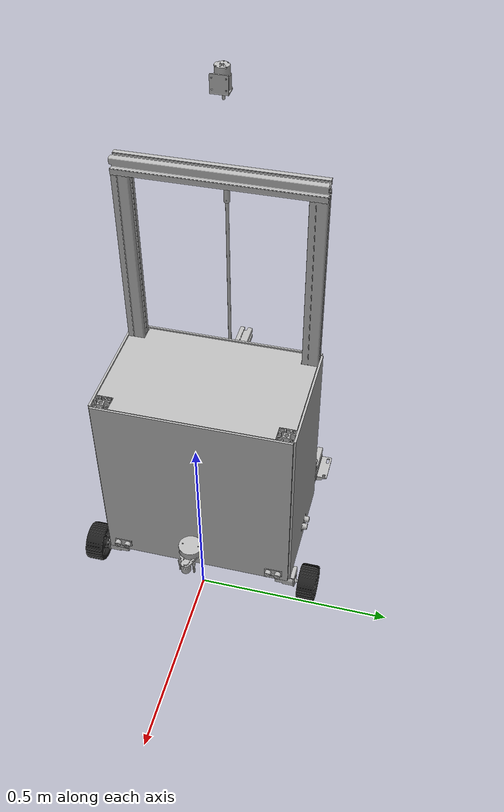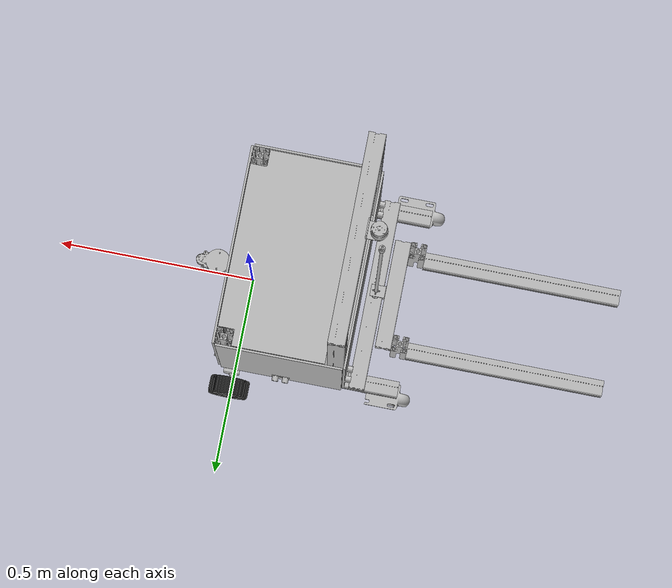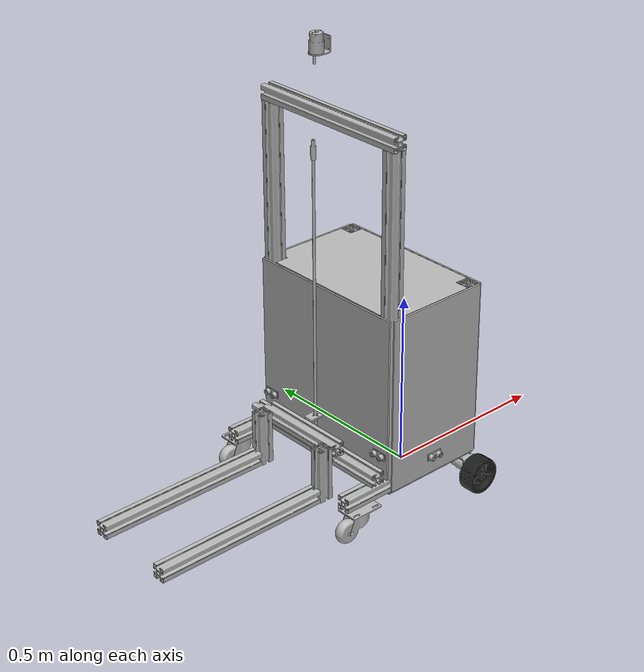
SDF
<sdf version="1.7">
 <world name="default">
  <gravity>0 0 -9.8</gravity>
  <physics name="default_physics" default="0" type="ode">
   <max_step_size>0.001</max_step_size>
   <real_time_factor>1</real_time_factor>
   <real_time_update_rate>1000</real_time_update_rate>
  </physics>
  <light name="Warehouse_CeilingLight_003" type="point">
   <pose>0 0 9 0 -0 0</pose>
   <diffuse>0.5 0.5 0.5 1</diffuse>
   <specular>0.2 0.2 0.2 1</specular>
   <attenuation>
    <range>80</range>
    <constant>0.3</constant>
    <linear>0.01</linear>
    <quadratic>0.001</quadratic>
   </attenuation>
   <direction>0.1 0.1 -1</direction>
   <spot><inner_angle>0</inner_angle><outer_angle>0</outer_angle><falloff>0</falloff></spot>
  </light>
  <magnetic_field>6e-06 2.3e-05 -4.2e-05</magnetic_field>
  <atmosphere type="adiabatic"/>
  <scene><ambient>0.4 0.4 0.4 1</ambient><background>0.7 0.7 0.7 1</background><shadows>1</shadows></scene>
  <audio><device>default</device></audio>
  <spherical_coordinates>
   <surface_model>EARTH_WGS84</surface_model>
   <latitude_deg>0</latitude_deg>
   <longitude_deg>0</longitude_deg>
   <elevation>0</elevation>
   <heading_deg>0</heading_deg>
  </spherical_coordinates>
  <model name="fork_robot">
   <link name="base_footprint">
    <inertial>
     <pose>-0.12469 0.000681 0.25111 0 -0 0</pose>
     <mass>270.954</mass>
     <inertia>
      <ixx>13.2104</ixx>
      <ixy>0.00317811</ixy>
      <ixz>0.253064</ixz>
      <iyy>11.6561</iyy>
      <iyz>-0.0112571</iyz>
      <izz>6.98851</izz>
     </inertia>
    </inertial>
    <collision name="base_footprint_fixed_joint_lump__base_link_collision">
     <pose>-0.123128 0.000456 0.427 0 -0 1.5708</pose>
     <geometry><box><size>0.6 0.325 0.68</size></box></geometry>
    </collision>
    <collision name="base_footprint_fixed_joint_lump__right_caster_link_1_collision_1">
     <pose>-0.407107 -0.284998 0.053 0 -0 1.5708</pose>
     <geometry><sphere><radius>0.053</radius></sphere></geometry>
     <surface>
      <contact><ode><kp>1e+06</kp><kd>10</kd><max_vel>1</max_vel><min_depth>0.001</min_depth></ode></contact>
      <friction><ode><mu>0.05</mu><mu2>0.05</mu2></ode></friction>
     </surface>
    </collision>
    <collision name="base_footprint_fixed_joint_lump__left_caster_link_1_collision_2">
     <pose>-0.407107 0.286002 0.053 0 -0 1.5708</pose>
     <geometry><sphere><radius>0.053</radius></sphere></geometry>
     <surface>
      <contact><ode><kp>1e+06</kp><kd>10</kd><max_vel>1</max_vel><min_depth>0.001</min_depth></ode></contact>
      <friction><ode><mu>0.05</mu><mu2>0.05</mu2></ode></friction>
     </surface>
    </collision>
    <visual name="base_footprint_fixed_joint_lump__base_link_visual">
     <pose>0.484372 0.208456 0.087 0 -0 1.5708</pose>
     <geometry>
      <mesh>
       <scale>0.001 0.001 0.001</scale>
       <uri>file:///home/raja/mybot_ws/install/mybot_description/share/mybot_description/meshes/base_link.stl</uri>
      </mesh>
     </geometry>
     <material>
      <script><name>Gazebo/Grey</name><uri>file://media/materials/scripts/gazebo.material</uri></script>
     </material>
    </visual>
    <visual name="base_footprint_fixed_joint_lump__front_bottom_slot_link_1_visual_1">
     <pose>0.484372 0.208456 0.087 0 -0 1.5708</pose>
     <geometry>
      <mesh>
       <scale>0.001 0.001 0.001</scale>
       <uri>file:///home/raja/mybot_ws/install/mybot_description/share/mybot_description/meshes/front_bottom_slot_link_1.stl</uri>
      </mesh>
     </geometry>
    </visual>
    <visual name="base_footprint_fixed_joint_lump__right_bottom_slot_link_1_visual_2">
     <pose>0.484372 0.208456 0.087 0 -0 1.5708</pose>
     <geometry>
      <mesh>
       <scale>0.001 0.001 0.001</scale>
       <uri>file:///home/raja/mybot_ws/install/mybot_description/share/mybot_description/meshes/right_bottom_slot_link_1.stl</uri>
      </mesh>
     </geometry>
    </visual>
    <visual name="base_footprint_fixed_joint_lump__right_caster_link_1_visual_3">
     <pose>0.484372 0.208456 0.087 0 -0 1.5708</pose>
     <geometry>
      <mesh>
       <scale>0.001 0.001 0.001</scale>
       <uri>file:///home/raja/mybot_ws/install/mybot_description/share/mybot_description/meshes/right_caster_link_1.stl</uri>
      </mesh>
     </geometry>
    </visual>
    <visual name="base_footprint_fixed_joint_lump__fork_front_slot_right_link_1_visual_4">
     <pose>0.484372 0.208456 0.087 0 -0 1.5708</pose>
     <geometry>
      <mesh>
       <scale>0.001 0.001 0.001</scale>
       <uri>file:///home/raja/mybot_ws/install/mybot_description/share/mybot_description/meshes/fork_front_slot_right_link_1.stl</uri>
      </mesh>
     </geometry>
    </visual>
    <visual name="base_footprint_fixed_joint_lump__right_panel_link_1_visual_5">
     <pose>0.484372 0.208456 0.087 0 -0 1.5708</pose>
     <geometry>
      <mesh>
       <scale>0.001 0.001 0.001</scale>
       <uri>file:///home/raja/mybot_ws/install/mybot_description/share/mybot_description/meshes/right_panel_link_1.stl</uri>
      </mesh>
     </geometry>
    </visual>
    <visual name="base_footprint_fixed_joint_lump__ultrasonic_side_right_1_visual_6">
     <pose>0.484372 0.208456 0.087 0 -0 1.5708</pose>
     <geometry>
      <mesh>
       <scale>0.001 0.001 0.001</scale>
       <uri>file:///home/raja/mybot_ws/install/mybot_description/share/mybot_description/meshes/ultrasonic_side_right_1.stl</uri>
      </mesh>
     </geometry>
    </visual>
    <visual name="base_footprint_fixed_joint_lump__left_bottom_slot_link_1_visual_7">
     <pose>0.484372 0.208456 0.087 0 -0 1.5708</pose>
     <geometry>
      <mesh>
       <scale>0.001 0.001 0.001</scale>
       <uri>file:///home/raja/mybot_ws/install/mybot_description/share/mybot_description/meshes/left_bottom_slot_link_1.stl</uri>
      </mesh>
     </geometry>
    </visual>
    <visual name="base_footprint_fixed_joint_lump__left_caster_link_1_visual_8">
     <pose>0.484372 0.208456 0.087 0 -0 1.5708</pose>
     <geometry>
      <mesh>
       <scale>0.001 0.001 0.001</scale>
       <uri>file:///home/raja/mybot_ws/install/mybot_description/share/mybot_description/meshes/left_caster_link_1.stl</uri>
      </mesh>
     </geometry>
    </visual>
    <visual name="base_footprint_fixed_joint_lump__fork_front_slot_left_link_1_visual_9">
     <pose>0.484372 0.208456 0.087 0 -0 1.5708</pose>
     <geometry>
      <mesh>
       <scale>0.001 0.001 0.001</scale>
       <uri>file:///home/raja/mybot_ws/install/mybot_description/share/mybot_description/meshes/fork_front_slot_left_link_1.stl</uri>
      </mesh>
     </geometry>
    </visual>
    <visual name="base_footprint_fixed_joint_lump__top_panel_link_1_visual_10">
     <pose>0.484372 0.208456 0.087 0 -0 1.5708</pose>
     <geometry>
      <mesh>
       <scale>0.001 0.001 0.001</scale>
       <uri>file:///home/raja/mybot_ws/install/mybot_description/share/mybot_description/meshes/top_panel_link_1.stl</uri>
      </mesh>
     </geometry>
    </visual>
    <visual name="base_footprint_fixed_joint_lump__lidar_link_1_visual_11">
     <pose>0.484372 0.208456 0.087 0 -0 1.5708</pose>
     <geometry>
      <mesh>
       <scale>0.001 0.001 0.001</scale>
       <uri>file:///home/raja/mybot_ws/install/mybot_description/share/mybot_description/meshes/lidar_link_1.stl</uri>
      </mesh>
     </geometry>
    </visual>
    <visual name="base_footprint_fixed_joint_lump__imu_link_1_visual_12">
     <pose>0.484372 0.208456 0.087 0 -0 1.5708</pose>
     <geometry>
      <mesh>
       <scale>0.001 0.001 0.001</scale>
       <uri>file:///home/raja/mybot_ws/install/mybot_description/share/mybot_description/meshes/imu_link_1.stl</uri>
      </mesh>
     </geometry>
    </visual>
    <visual name="base_footprint_fixed_joint_lump__fork_rear_slot_left_link_1_visual_13">
     <pose>0.484372 0.208456 0.087 0 -0 1.5708</pose>
     <geometry>
      <mesh>
       <scale>0.001 0.001 0.001</scale>
       <uri>file:///home/raja/mybot_ws/install/mybot_description/share/mybot_description/meshes/fork_rear_slot_left_link_1.stl</uri>
      </mesh>
     </geometry>
    </visual>
    <visual name="base_footprint_fixed_joint_lump__fork_top_slot_link_1_visual_14">
     <pose>0.484372 0.208456 0.087 0 -0 1.5708</pose>
     <geometry>
      <mesh>
       <scale>0.001 0.001 0.001</scale>
       <uri>file:///home/raja/mybot_ws/install/mybot_description/share/mybot_description/meshes/fork_top_slot_link_1.stl</uri>
      </mesh>
     </geometry>
    </visual>
    <visual name="base_footprint_fixed_joint_lump__fork_rear_slot_right_link_1_visual_15">
     <pose>0.484372 0.208456 0.087 0 -0 1.5708</pose>
     <geometry>
      <mesh>
       <scale>0.001 0.001 0.001</scale>
       <uri>file:///home/raja/mybot_ws/install/mybot_description/share/mybot_description/meshes/fork_rear_slot_right_link_1.stl</uri>
      </mesh>
     </geometry>
    </visual>
    <visual name="base_footprint_fixed_joint_lump__fork_bottom_slot_link_1_visual_16">
     <pose>0.484372 0.208456 0.087 0 -0 1.5708</pose>
     <geometry>
      <mesh>
       <scale>0.001 0.001 0.001</scale>
       <uri>file:///home/raja/mybot_ws/install/mybot_description/share/mybot_description/meshes/fork_bottom_slot_link_1.stl</uri>
      </mesh>
     </geometry>
    </visual>
    <visual name="base_footprint_fixed_joint_lump__bottom_screw_holder_link_1_visual_17">
     <pose>0.484372 0.208456 0.087 0 -0 1.5708</pose>
     <geometry>
      <mesh>
       <scale>0.001 0.001 0.001</scale>
       <uri>file:///home/raja/mybot_ws/install/mybot_description/share/mybot_description/meshes/bottom_screw_holder_link_1.stl</uri>
      </mesh>
     </geometry>
    </visual>
    <visual name="base_footprint_fixed_joint_lump__lead_motor_holder_link_1_visual_18">
     <pose>0.484372 0.208456 0.087 0 -0 1.5708</pose>
     <geometry>
      <mesh>
       <scale>0.001 0.001 0.001</scale>
       <uri>file:///home/raja/mybot_ws/install/mybot_description/share/mybot_description/meshes/lead_motor_holder_link_1.stl</uri>
      </mesh>
     </geometry>
    </visual>
    <visual name="base_footprint_fixed_joint_lump__lead_motor_link_1_visual_19">
     <pose>0.484372 0.208456 0.087 0 -0 1.5708</pose>
     <geometry>
      <mesh>
       <scale>0.001 0.001 0.001</scale>
       <uri>file:///home/raja/mybot_ws/install/mybot_description/share/mybot_description/meshes/lead_motor_link_1.stl</uri>
      </mesh>
     </geometry>
    </visual>
    <visual name="base_footprint_fixed_joint_lump__coupling_link_1_visual_20">
     <pose>0.484372 0.208456 0.087 0 -0 1.5708</pose>
     <geometry>
      <mesh>
       <scale>0.001 0.001 0.001</scale>
       <uri>file:///home/raja/mybot_ws/install/mybot_description/share/mybot_description/meshes/coupling_link_1.stl</uri>
      </mesh>
     </geometry>
    </visual>
    <visual name="base_footprint_fixed_joint_lump__lead_screw_link_1_visual_21">
     <pose>0.484372 0.208456 0.087 0 -0 1.5708</pose>
     <geometry>
      <mesh>
       <scale>0.001 0.001 0.001</scale>
       <uri>file:///home/raja/mybot_ws/install/mybot_description/share/mybot_description/meshes/lead_screw_link_1.stl</uri>
      </mesh>
     </geometry>
    </visual>
    <visual name="base_footprint_fixed_joint_lump__left_panel_link_1_visual_22">
     <pose>0.484372 0.208456 0.087 0 -0 1.5708</pose>
     <geometry>
      <mesh>
       <scale>0.001 0.001 0.001</scale>
       <uri>file:///home/raja/mybot_ws/install/mybot_description/share/mybot_description/meshes/left_panel_link_1.stl</uri>
      </mesh>
     </geometry>
    </visual>
    <visual name="base_footprint_fixed_joint_lump__ultrasonic_side_left_1_visual_23">
     <pose>0.484372 0.208456 0.087 0 -0 1.5708</pose>
     <geometry>
      <mesh>
       <scale>0.001 0.001 0.001</scale>
       <uri>file:///home/raja/mybot_ws/install/mybot_description/share/mybot_description/meshes/ultrasonic_side_left_1.stl</uri>
      </mesh>
     </geometry>
    </visual>
    <visual name="base_footprint_fixed_joint_lump__front_panel_link_1_visual_24">
     <pose>0.484372 0.208456 0.087 0 -0 1.5708</pose>
     <geometry>
      <mesh>
       <scale>0.001 0.001 0.001</scale>
       <uri>file:///home/raja/mybot_ws/install/mybot_description/share/mybot_description/meshes/front_panel_link_1.stl</uri>
      </mesh>
     </geometry>
    </visual>
    <visual name="base_footprint_fixed_joint_lump__ultrasonic_front_left_1_visual_25">
     <pose>0.484372 0.208456 0.087 0 -0 1.5708</pose>
     <geometry>
      <mesh>
       <scale>0.001 0.001 0.001</scale>
       <uri>file:///home/raja/mybot_ws/install/mybot_description/share/mybot_description/meshes/ultrasonic_front_left_1.stl</uri>
      </mesh>
     </geometry>
    </visual>
    <visual name="base_footprint_fixed_joint_lump__ultrasonic_front_right_1_visual_26">
     <pose>0.484372 0.208456 0.087 0 -0 1.5708</pose>
     <geometry>
      <mesh>
       <scale>0.001 0.001 0.001</scale>
       <uri>file:///home/raja/mybot_ws/install/mybot_description/share/mybot_description/meshes/ultrasonic_front_right_1.stl</uri>
      </mesh>
     </geometry>
    </visual>
    <visual name="base_footprint_fixed_joint_lump__rear_bottom_slot_link_1_visual_27">
     <pose>0.484372 0.208456 0.087 0 -0 1.5708</pose>
     <geometry>
      <mesh>
       <scale>0.001 0.001 0.001</scale>
       <uri>file:///home/raja/mybot_ws/install/mybot_description/share/mybot_description/meshes/rear_bottom_slot_link_1.stl</uri>
      </mesh>
     </geometry>
    </visual>
    <visual name="base_footprint_fixed_joint_lump__rear_panel_link_1_visual_28">
     <pose>0.484372 0.208456 0.087 0 -0 1.5708</pose>
     <geometry>
      <mesh>
       <scale>0.001 0.001 0.001</scale>
       <uri>file:///home/raja/mybot_ws/install/mybot_description/share/mybot_description/meshes/rear_panel_link_1.stl</uri>
      </mesh>
     </geometry>
    </visual>
    <visual name="base_footprint_fixed_joint_lump__ultrasonic_rear_right_1_visual_29">
     <pose>0.484372 0.208456 0.087 0 -0 1.5708</pose>
     <geometry>
      <mesh>
       <scale>0.001 0.001 0.001</scale>
       <uri>file:///home/raja/mybot_ws/install/mybot_description/share/mybot_description/meshes/ultrasonic_rear_right_1.stl</uri>
      </mesh>
     </geometry>
    </visual>
    <visual name="base_footprint_fixed_joint_lump__ultrasonic_rear_left_1_visual_30">
     <pose>0.484372 0.208456 0.087 0 -0 1.5708</pose>
     <geometry>
      <mesh>
       <scale>0.001 0.001 0.001</scale>
       <uri>file:///home/raja/mybot_ws/install/mybot_description/share/mybot_description/meshes/ultrasonic_rear_left_1.stl</uri>
      </mesh>
     </geometry>
    </visual>
    <visual name="base_footprint_fixed_joint_lump__left_motor_holder_link_1_visual_31">
     <pose>0.484372 0.208456 0.087 0 -0 1.5708</pose>
     <geometry>
      <mesh>
       <scale>0.001 0.001 0.001</scale>
       <uri>file:///home/raja/mybot_ws/install/mybot_description/share/mybot_description/meshes/left_motor_holder_link_1.stl</uri>
      </mesh>
     </geometry>
    </visual>
    <visual name="base_footprint_fixed_joint_lump__left_motor_link_1_visual_32">
     <pose>0.484372 0.208456 0.087 0 -0 1.5708</pose>
     <geometry>
      <mesh>
       <scale>0.001 0.001 0.001</scale>
       <uri>file:///home/raja/mybot_ws/install/mybot_description/share/mybot_description/meshes/left_motor_link_1.stl</uri>
      </mesh>
     </geometry>
    </visual>
    <visual name="base_footprint_fixed_joint_lump__right_motor_holder_link_1_visual_33">
     <pose>0.484372 0.208456 0.087 0 -0 1.5708</pose>
     <geometry>
      <mesh>
       <scale>0.001 0.001 0.001</scale>
       <uri>file:///home/raja/mybot_ws/install/mybot_description/share/mybot_description/meshes/right_motor_holder_link_1.stl</uri>
      </mesh>
     </geometry>
    </visual>
    <visual name="base_footprint_fixed_joint_lump__right_motor_link_1_visual_34">
     <pose>0.484372 0.208456 0.087 0 -0 1.5708</pose>
     <geometry>
      <mesh>
       <scale>0.001 0.001 0.001</scale>
       <uri>file:///home/raja/mybot_ws/install/mybot_description/share/mybot_description/meshes/right_motor_link_1.stl</uri>
      </mesh>
     </geometry>
    </visual>
    <sensor name="ultrasonic_side_right_sensor" type="ray">
     <always_on>1</always_on>
     <visualize>0</visualize>
     <update_rate>10</update_rate>
     <ray>
      <scan>
       <horizontal>
        <samples>5</samples>
        <resolution>1</resolution>
        <min_angle>-0.13</min_angle>
        <max_angle>0.13</max_angle>
       </horizontal>
       <vertical>
        <samples>1</samples>
        <resolution>1</resolution>
        <min_angle>0</min_angle>
        <max_angle>0</max_angle>
       </vertical>
      </scan>
      <range><min>0.05</min><max>4</max><resolution>0.01</resolution></range>
      <noise><type>gaussian</type><mean>0</mean><stddev>0.005</stddev></noise>
     </ray>
     <plugin name="ultrasonic_side_right_plugin" filename="libgazebo_ros_ray_sensor.so">
      <ros><remapping>~/out:=/ultrasonic_side_right</remapping></ros>
      <output_type>sensor_msgs/Range</output_type>
      <radiation_type>ultrasound</radiation_type>
      <frame_name>ultrasonic_side_right_sensor_link</frame_name>
     </plugin>
     <pose>-0.121009 -0.298492 0.144721 0 0 -1.5708</pose>
    </sensor>
    <sensor name="lidar_sensor" type="ray">
     <always_on>1</always_on>
     <visualize>1</visualize>
     <update_rate>30</update_rate>
     <ray>
      <scan>
       <horizontal>
        <samples>180</samples>
        <resolution>1</resolution>
        <min_angle>1.5708</min_angle>
        <max_angle>4.7124</max_angle>
       </horizontal>
       <vertical><samples>1</samples><min_angle>0</min_angle><max_angle>0</max_angle></vertical>
      </scan>
      <range><min>0.12</min><max>10</max><resolution>0.01</resolution></range>
      <noise><type>gaussian</type><mean>0</mean><stddev>0.01</stddev></noise>
     </ray>
     <plugin name="laser_plugin" filename="libgazebo_ros_ray_sensor.so">
      <ros><remapping>~/out:=/scan</remapping></ros>
      <frame_name>laser_link</frame_name>
      <output_type>sensor_msgs/LaserScan</output_type>
     </plugin>
     <pose>-0.103744 0.00138 0.797 0 -0 3.14159</pose>
    </sensor>
    <sensor name="imu_sensor" type="imu">
     <always_on>1</always_on>
     <update_rate>100</update_rate>
     <visualize>0</visualize>
     <imu>
      <angular_velocity>
       <x><noise type="gaussian"><mean>0</mean><stddev>0.0002</stddev></noise></x>
       <y><noise type="gaussian"><mean>0</mean><stddev>0.0002</stddev></noise></y>
       <z><noise type="gaussian"><mean>0</mean><stddev>0.0002</stddev></noise></z>
      </angular_velocity>
      <linear_acceleration>
       <x><noise type="gaussian"><mean>0</mean><stddev>0.017</stddev></noise></x>
       <y><noise type="gaussian"><mean>0</mean><stddev>0.017</stddev></noise></y>
       <z><noise type="gaussian"><mean>0</mean><stddev>0.017</stddev></noise></z>
      </linear_acceleration>
     </imu>
     <plugin name="imu_plugin" filename="libgazebo_ros_imu_sensor.so">
      <ros><namespace>/</namespace><remapping>~/out:=imu</remapping></ros>
      <frame_name>imu_link</frame_name>
      <initial_orientation_as_reference>0</initial_orientation_as_reference>
     </plugin>
     <pose>-0.121277 0.00138 0.782 0 -0 0</pose>
    </sensor>
    <sensor name="ultrasonic_side_left_sensor" type="ray">
     <always_on>1</always_on>
     <visualize>0</visualize>
     <update_rate>10</update_rate>
     <ray>
      <scan>
       <horizontal>
        <samples>5</samples>
        <resolution>1</resolution>
        <min_angle>-0.13</min_angle>
        <max_angle>0.13</max_angle>
       </horizontal>
       <vertical>
        <samples>1</samples>
        <resolution>1</resolution>
        <min_angle>0</min_angle>
        <max_angle>0</max_angle>
       </vertical>
      </scan>
      <range><min>0.05</min><max>4</max><resolution>0.01</resolution></range>
      <noise><type>gaussian</type><mean>0</mean><stddev>0.005</stddev></noise>
     </ray>
     <plugin name="ultrasonic_side_left_plugin" filename="libgazebo_ros_ray_sensor.so">
      <ros><remapping>~/out:=/ultrasonic_side_left</remapping></ros>
      <output_type>sensor_msgs/Range</output_type>
      <radiation_type>ultrasound</radiation_type>
      <frame_name>ultrasonic_side_left_sensor_link</frame_name>
     </plugin>
     <pose>-0.122509 0.300495 0.144721 0 -0 1.5708</pose>
    </sensor>
    <sensor name="ultrasonic_front_left_sensor" type="ray">
     <always_on>1</always_on>
     <visualize>0</visualize>
     <update_rate>10</update_rate>
     <ray>
      <scan>
       <horizontal>
        <samples>5</samples>
        <resolution>1</resolution>
        <min_angle>-0.13</min_angle>
        <max_angle>0.13</max_angle>
       </horizontal>
       <vertical>
        <samples>1</samples>
        <resolution>1</resolution>
        <min_angle>0</min_angle>
        <max_angle>0</max_angle>
       </vertical>
      </scan>
      <range><min>0.05</min><max>4</max><resolution>0.01</resolution></range>
      <noise><type>gaussian</type><mean>0</mean><stddev>0.005</stddev></noise>
     </ray>
     <plugin name="ultrasonic_front_left_plugin" filename="libgazebo_ros_ray_sensor.so">
      <ros><remapping>~/out:=/ultrasonic_front_left</remapping></ros>
      <output_type>sensor_msgs/Range</output_type>
      <radiation_type>ultrasound</radiation_type>
      <frame_name>ultrasonic_front_left_sensor_link</frame_name>
     </plugin>
     <pose>0.041485 0.229501 0.144721 0 -0 0</pose>
    </sensor>
    <sensor name="ultrasonic_front_right_sensor" type="ray">
     <always_on>1</always_on>
     <visualize>0</visualize>
     <update_rate>10</update_rate>
     <ray>
      <scan>
       <horizontal>
        <samples>5</samples>
        <resolution>1</resolution>
        <min_angle>-0.13</min_angle>
        <max_angle>0.13</max_angle>
       </horizontal>
       <vertical>
        <samples>1</samples>
        <resolution>1</resolution>
        <min_angle>0</min_angle>
        <max_angle>0</max_angle>
       </vertical>
      </scan>
      <range><min>0.05</min><max>4</max><resolution>0.01</resolution></range>
      <noise><type>gaussian</type><mean>0</mean><stddev>0.005</stddev></noise>
     </ray>
     <plugin name="ultrasonic_front_right_plugin" filename="libgazebo_ros_ray_sensor.so">
      <ros><remapping>~/out:=/ultrasonic_front_right</remapping></ros>
      <output_type>sensor_msgs/Range</output_type>
      <radiation_type>ultrasound</radiation_type>
      <frame_name>ultrasonic_front_right_sensor_link</frame_name>
     </plugin>
     <pose>0.041485 -0.238499 0.144721 0 -0 0</pose>
    </sensor>
    <sensor name="ultrasonic_rear_right_sensor" type="ray">
     <always_on>1</always_on>
     <visualize>0</visualize>
     <update_rate>10</update_rate>
     <ray>
      <scan>
       <horizontal>
        <samples>5</samples>
        <resolution>1</resolution>
        <min_angle>-0.13</min_angle>
        <max_angle>0.13</max_angle>
       </horizontal>
       <vertical>
        <samples>1</samples>
        <resolution>1</resolution>
        <min_angle>0</min_angle>
        <max_angle>0</max_angle>
       </vertical>
      </scan>
      <range><min>0.05</min><max>4</max><resolution>0.01</resolution></range>
      <noise><type>gaussian</type><mean>0</mean><stddev>0.005</stddev></noise>
     </ray>
     <plugin name="ultrasonic_rear_right_plugin" filename="libgazebo_ros_ray_sensor.so">
      <ros><remapping>~/out:=/ultrasonic_rear_right</remapping></ros>
      <output_type>sensor_msgs/Range</output_type>
      <radiation_type>ultrasound</radiation_type>
      <frame_name>ultrasonic_rear_right_sensor_link</frame_name>
     </plugin>
     <pose>-0.287622 -0.258748 0.193721 0 -0 3.14159</pose>
    </sensor>
    <sensor name="ultrasonic_rear_left_sensor" type="ray">
     <always_on>1</always_on>
     <visualize>0</visualize>
     <update_rate>10</update_rate>
     <ray>
      <scan>
       <horizontal>
        <samples>5</samples>
        <resolution>1</resolution>
        <min_angle>-0.13</min_angle>
        <max_angle>0.13</max_angle>
       </horizontal>
       <vertical>
        <samples>1</samples>
        <resolution>1</resolution>
        <min_angle>0</min_angle>
        <max_angle>0</max_angle>
       </vertical>
      </scan>
      <range><min>0.05</min><max>4</max><resolution>0.01</resolution></range>
      <noise><type>gaussian</type><mean>0</mean><stddev>0.005</stddev></noise>
     </ray>
     <plugin name="ultrasonic_rear_left_plugin" filename="libgazebo_ros_ray_sensor.so">
      <ros><remapping>~/out:=/ultrasonic_rear_left</remapping></ros>
      <output_type>sensor_msgs/Range</output_type>
      <radiation_type>ultrasound</radiation_type>
      <frame_name>ultrasonic_rear_left_sensor_link</frame_name>
     </plugin>
     <pose>-0.287621 0.259252 0.193721 0 -0 3.14159</pose>
    </sensor>
   </link>
   <joint name="Slider_43" type="prismatic">
    <pose relative_to="base_footprint">-0.323797 -0.001499 0.254762 0 -0 1.5708</pose>
    <parent>base_footprint</parent>
    <child>fork_holder_link_1</child>
    <axis>
     <xyz>0 0 1</xyz>
     <limit><lower>0</lower><upper>0.8</upper><effort>500</effort><velocity>0.2</velocity></limit>
     <dynamics>
      <damping>200</damping>
      <friction>50</friction>
      <spring_reference>0</spring_reference>
      <spring_stiffness>0</spring_stiffness>
     </dynamics>
    </axis>
   </joint>
   <link name="fork_holder_link_1">
    <pose relative_to="Slider_43">0 0 0 0 -0 0</pose>
    <inertial>
     <pose>0.000925 0.228928 -0.099828 0 -0 0</pose>
     <mass>2.37069</mass>
     <inertia>
      <ixx>0.0857229</ixx>
      <ixy>-0.000246722</ixy>
      <ixz>-0.000181366</ixz>
      <iyy>0.0349573</iyy>
      <iyz>0.0151669</iyz>
      <izz>0.108027</izz>
     </inertia>
    </inertial>
    <collision name="fork_holder_link_1_fixed_joint_lump__fork_left_link_1_collision">
     <pose>0.118 0.341452 -0.132112 0 -0 0</pose>
     <geometry><box><size>0.04 0.5 0.04</size></box></geometry>
    </collision>
    <collision name="fork_holder_link_1_fixed_joint_lump__fork_right_link_1_collision_1">
     <pose>-0.115 0.341452 -0.135112 0 -0 0</pose>
     <geometry><box><size>0.04 0.5 0.04</size></box></geometry>
    </collision>
    <visual name="fork_holder_link_1_visual">
     <pose>0.209955 -0.808169 -0.167762 0 -0 0</pose>
     <geometry>
      <mesh>
       <scale>0.001 0.001 0.001</scale>
       <uri>file:///home/raja/mybot_ws/install/mybot_description/share/mybot_description/meshes/fork_holder_link_1.stl</uri>
      </mesh>
     </geometry>
    </visual>
    <visual name="fork_holder_link_1_fixed_joint_lump__fork_coupling_link_1_visual_1">
     <pose>0.209955 -0.80817 -0.167762 0 -0 0</pose>
     <geometry>
      <mesh>
       <scale>0.001 0.001 0.001</scale>
       <uri>file:///home/raja/mybot_ws/install/mybot_description/share/mybot_description/meshes/fork_coupling_link_1.stl</uri>
      </mesh>
     </geometry>
    </visual>
    <visual name="fork_holder_link_1_fixed_joint_lump__fork_center_slot_1_visual_2">
     <pose>0.209955 -0.80817 -0.167762 0 -0 0</pose>
     <geometry>
      <mesh>
       <scale>0.001 0.001 0.001</scale>
       <uri>file:///home/raja/mybot_ws/install/mybot_description/share/mybot_description/meshes/fork_center_slot_1.stl</uri>
      </mesh>
     </geometry>
    </visual>
    <visual name="fork_holder_link_1_fixed_joint_lump__fork_left_h_slot_1_visual_3">
     <pose>0.209955 -0.80817 -0.167762 0 -0 0</pose>
     <geometry>
      <mesh>
       <scale>0.001 0.001 0.001</scale>
       <uri>file:///home/raja/mybot_ws/install/mybot_description/share/mybot_description/meshes/fork_left_h_slot_1.stl</uri>
      </mesh>
     </geometry>
    </visual>
    <visual name="fork_holder_link_1_fixed_joint_lump__fork_left_link_1_visual_4">
     <pose>0.209955 -0.80817 -0.167762 0 -0 0</pose>
     <geometry>
      <mesh>
       <scale>0.001 0.001 0.001</scale>
       <uri>file:///home/raja/mybot_ws/install/mybot_description/share/mybot_description/meshes/fork_left_link_1.stl</uri>
      </mesh>
     </geometry>
    </visual>
    <visual name="fork_holder_link_1_fixed_joint_lump__fork_right_h_slot_1_visual_5">
     <pose>0.209955 -0.80817 -0.167762 0 -0 0</pose>
     <geometry>
      <mesh>
       <scale>0.001 0.001 0.001</scale>
       <uri>file:///home/raja/mybot_ws/install/mybot_description/share/mybot_description/meshes/fork_right_h_slot_1.stl</uri>
      </mesh>
     </geometry>
    </visual>
    <visual name="fork_holder_link_1_fixed_joint_lump__fork_right_link_1_visual_6">
     <pose>0.209955 -0.80817 -0.167762 0 -0 0</pose>
     <geometry>
      <mesh>
       <scale>0.001 0.001 0.001</scale>
       <uri>file:///home/raja/mybot_ws/install/mybot_description/share/mybot_description/meshes/fork_right_link_1.stl</uri>
      </mesh>
     </geometry>
    </visual>
   </link>
   <joint name="Rigid_17" type="revolute">
    <pose relative_to="base_footprint">0 0.339283 0.053 0 -0 1.5708</pose>
    <parent>base_footprint</parent>
    <child>left_wheel_link_1</child>
    <axis>
     <xyz>1 0 0</xyz>
     <limit><effort>300</effort><velocity>20</velocity><lower>-1e+16</lower><upper>1e+16</upper></limit>
     <dynamics>
      <damping>0.2</damping>
      <friction>0</friction>
      <spring_reference>0</spring_reference>
      <spring_stiffness>0</spring_stiffness>
     </dynamics>
    </axis>
   </joint>
   <link name="left_wheel_link_1">
    <pose relative_to="Rigid_17">0 0 0 0 -0 0</pose>
    <inertial>
     <mass>1.94019</mass>
     <inertia>
      <ixx>0.002715</ixx>
      <ixy>0</ixy>
      <ixz>0</ixz>
      <iyy>0.001642</iyy>
      <iyz>0</iyz>
      <izz>0.001642</izz>
     </inertia>
    </inertial>
    <collision name="left_wheel_link_1_collision">
     <pose>0 -0 0 3.14159 1.57079 3.14159</pose>
     <geometry><cylinder><length>0.04</length><radius>0.053</radius></cylinder></geometry>
     <surface>
      <contact><ode><kp>1e+06</kp><kd>100</kd><max_vel>1</max_vel><min_depth>0.001</min_depth></ode></contact>
      <friction><ode><mu>1.2</mu><mu2>1.2</mu2></ode></friction>
     </surface>
    </collision>
    <visual name="left_wheel_link_1_visual">
     <pose>-0.130827 -0.484372 0.034 0 -0 0</pose>
     <geometry>
      <mesh>
       <scale>0.001 0.001 0.001</scale>
       <uri>file:///home/raja/mybot_ws/install/mybot_description/share/mybot_description/meshes/left_wheel_link_1.stl</uri>
      </mesh>
     </geometry>
     <material>
      <script><name>Gazebo/Black</name><uri>file://media/materials/scripts/gazebo.material</uri></script>
     </material>
    </visual>
   </link>
   <joint name="Rigid_18" type="revolute">
    <pose relative_to="base_footprint">-0 -0.339284 0.053 0 -0 1.5708</pose>
    <parent>base_footprint</parent>
    <child>right_wheel_link_1</child>
    <axis>
     <xyz>1 0 0</xyz>
     <limit><effort>300</effort><velocity>20</velocity><lower>-1e+16</lower><upper>1e+16</upper></limit>
     <dynamics>
      <damping>0.2</damping>
      <friction>0</friction>
      <spring_reference>0</spring_reference>
      <spring_stiffness>0</spring_stiffness>
     </dynamics>
    </axis>
   </joint>
   <link name="right_wheel_link_1">
    <pose relative_to="Rigid_18">0 0 0 0 -0 0</pose>
    <inertial>
     <mass>1.94019</mass>
     <inertia>
      <ixx>0.002715</ixx>
      <ixy>0</ixy>
      <ixz>0</ixz>
      <iyy>0.001642</iyy>
      <iyz>0</iyz>
      <izz>0.001642</izz>
     </inertia>
    </inertial>
    <collision name="right_wheel_link_1_collision">
     <pose>0 -0 0 3.14159 1.57079 3.14159</pose>
     <geometry><cylinder><length>0.04</length><radius>0.053</radius></cylinder></geometry>
     <surface>
      <contact><ode><kp>1e+06</kp><kd>100</kd><max_vel>1</max_vel><min_depth>0.001</min_depth></ode></contact>
      <friction><ode><mu>1.2</mu><mu2>1.2</mu2></ode></friction>
     </surface>
    </collision>
    <visual name="right_wheel_link_1_visual">
     <pose>0.54774 -0.484372 0.034 0 -0 0</pose>
     <geometry>
      <mesh>
       <scale>0.001 0.001 0.001</scale>
       <uri>file:///home/raja/mybot_ws/install/mybot_description/share/mybot_description/meshes/right_wheel_link_1.stl</uri>
      </mesh>
     </geometry>
     <material>
      <script><name>Gazebo/Black</name><uri>file://media/materials/scripts/gazebo.material</uri></script>
     </material>
    </visual>
   </link>
   <static>0</static>
   <plugin name="gazebo_ros2_control" filename="libgazebo_ros2_control.so">
    <robot_param>robot_description</robot_param>
    <robot_param_node>robot_state_publisher</robot_param_node>
    <parameters>/home/raja/mybot_ws/install/mybot_gazebo/share/mybot_gazebo/config/fork_controllers.yaml</parameters>
    <ros>
     <remapping>diff_drive_controller/odom:=/odom</remapping>
     <remapping>diff_drive_controller/cmd_vel_unstamped:=/cmd_vel</remapping>
    </ros>
   </plugin>
   <pose>0.000401 0.000134 0.032761 -2e-06 0.000111 -0.000244</pose>
  </model>
 </world>
</sdf>
